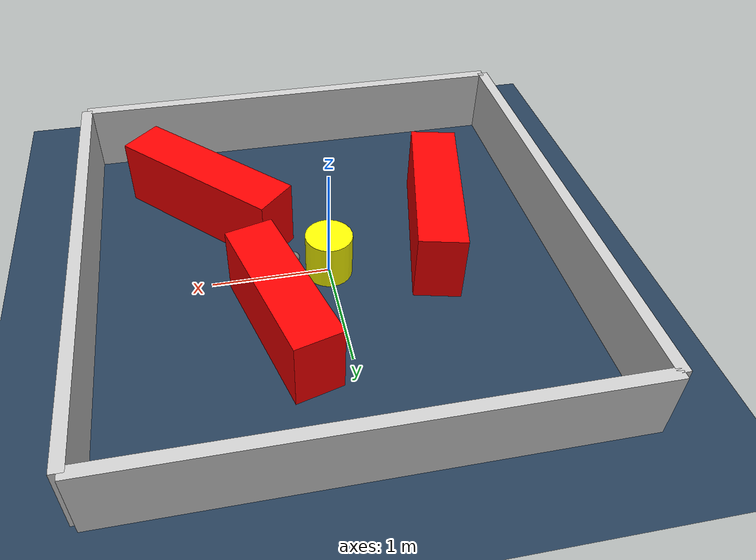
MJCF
<?xml version="1.0" ?>
<mujoco model="generated_environment">
  <option timestep="0.01" integrator="RK4" cone="elliptic"/>
  <default>
    <geom density="1"/>
  </default>
  <asset>
    <texture builtin="gradient" height="3072" rgb1="0.3 0.5 0.7" rgb2="0 0 0" type="skybox" width="512"/>
    <texture builtin="checker" height="300" mark="edge" markrgb="0.8 0.8 0.8" name="groundplane" rgb1="0.2 0.3 0.4" rgb2="0.1 0.2 0.3" type="2d" width="300"/>
    <material name="groundplane" reflectance="0.2" texrepeat="5 5" texture="groundplane" texuniform="true"/>
    <material name="robot" rgba="0.0 1.0 0.0 1"/>
  </asset>
  <worldbody>
    <light dir="0 0 -1" directional="true" pos="0 0 1.5"/>
    <geom condim="4" friction="1.0 0.005 0.001" material="groundplane" name="floor" size="0 0 0.05" type="plane"/>
    <body name="walls">
      <geom name="wall_1" condim="4" pos="-2.0 0.0 0.3" rgba="0.800000011920929 0.800000011920929 0.800000011920929 1.0" size="0.05 2.0 0.3" type="box"/>
      <geom name="wall_2" condim="4" pos="2.0 0.0 0.3" rgba="0.800000011920929 0.800000011920929 0.800000011920929 1.0" size="0.05 2.0 0.3" type="box"/>
      <geom name="wall_3" condim="4" pos="0.0 -2.0 0.3" rgba="0.800000011920929 0.800000011920929 0.800000011920929 1.0" size="2.0 0.05 0.3" type="box"/>
      <geom name="wall_4" condim="4" pos="0.0 2.0 0.3" rgba="0.800000011920929 0.800000011920929 0.800000011920929 1.0" size="2.0 0.05 0.3" type="box"/>
    </body>
    <body name="robot">
      <joint name="joint_x" type="slide" pos="0 0 0" axis="1 0 0"/>
      <joint name="joint_y" type="slide" pos="0 0 0" axis="0 1 0"/>
      <geom name="robot" type="sphere" pos="0.3 0.0 0.2" size="0.05" mass="5." friction="1.0 0.005 0.0001" condim="4" rgba="0.5 0.5 0.5 1.0"/>
      <site name="sensor_ball"/>
    </body>
    <body name="obstacle_movable_1">
      <geom name="obstacle_movable_1" condim="4" pos="0.0 0.0 0.2" euler="0 0 0.0" friction="1.0 0.005 0.001" rgba="1.0 1.0 0.0 1.0" size="0.2 0.2 0.0" type="cylinder" mass="0.1"/>
      <joint type="free"/>
    </body>
    <body name="obstacle_2_static">
      <geom name="obstacle_2_static" condim="4" pos="0.48106359494855155 0.6416065159880893 0.3" euler="0 0 285.2887957669223" friction="1.0 0.005 0.001" rgba="1 0 0 1" size="0.6696652469242285 0.2 0.3" type="box"/>
    </body>
    <body name="obstacle_3_static">
      <geom name="obstacle_3_static" condim="4" pos="-1.0034193363292465 -0.2800100437129813 0.3" euler="0 0 256.7122932744446" friction="1.0 0.005 0.001" rgba="1 0 0 1" size="0.7707443807248199 0.2 0.3" type="box"/>
    </body>
    <body name="obstacle_4_static">
      <geom name="obstacle_4_static" condim="4" pos="0.9389187951954419 -0.9022979663806691 0.3" euler="0 0 314.1753315983605" friction="1.0 0.005 0.001" rgba="1 0 0 1" size="0.7995423132254496 0.2 0.3" type="box"/>
    </body>
  </worldbody>
  <actuator>
    <motor name="actuator_x" joint="joint_x" gear="1" ctrlrange="-1 1"/>
    <motor name="actuator_y" joint="joint_y" gear="1" ctrlrange="-1 1"/>
  </actuator>
</mujoco>
